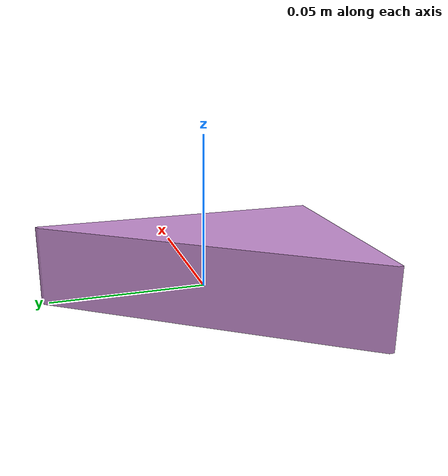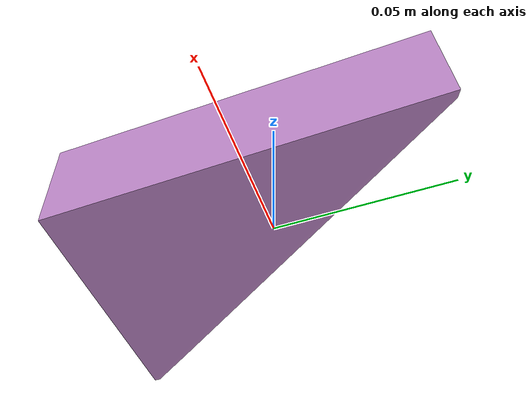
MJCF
<mujoco model="shapenetsem36">
  <asset>
    <mesh file="meshes/shapenetsem36/shapenetsem36_0.stl" name="shapenetsem36_0" scale="0.35 0.35 0.7"/>
  </asset>
  <worldbody>
    <body>
      <body name="collision">
        <geom pos="0 0 0" mesh="shapenetsem36_0" type="mesh" solimp="0.998 0.998 0.001" solref="0.001 1" density="100" friction="0.95 0.3 0.1" rgba="0.73 0.52 0.77 1" group="1" condim="4"/>
      </body>
      <body name="visual">
        <geom pos="0 0 0" mesh="shapenetsem36_0" type="mesh" rgba="0 1 0 1" conaffinity="0" contype="0" group="0" mass="0.0001"/>
      </body>
      <site rgba="0 0 0 0" size="0.005" pos="0 0 -0.06" name="bottom_site"/>
      <site rgba="0 0 0 0" size="0.005" pos="0 0 0.04" name="top_site"/>
      <site rgba="0 0 0 0" size="0.005" pos="0.025 0.025 0" name="horizontal_radius_site"/>
    </body>
  </worldbody>
</mujoco>
